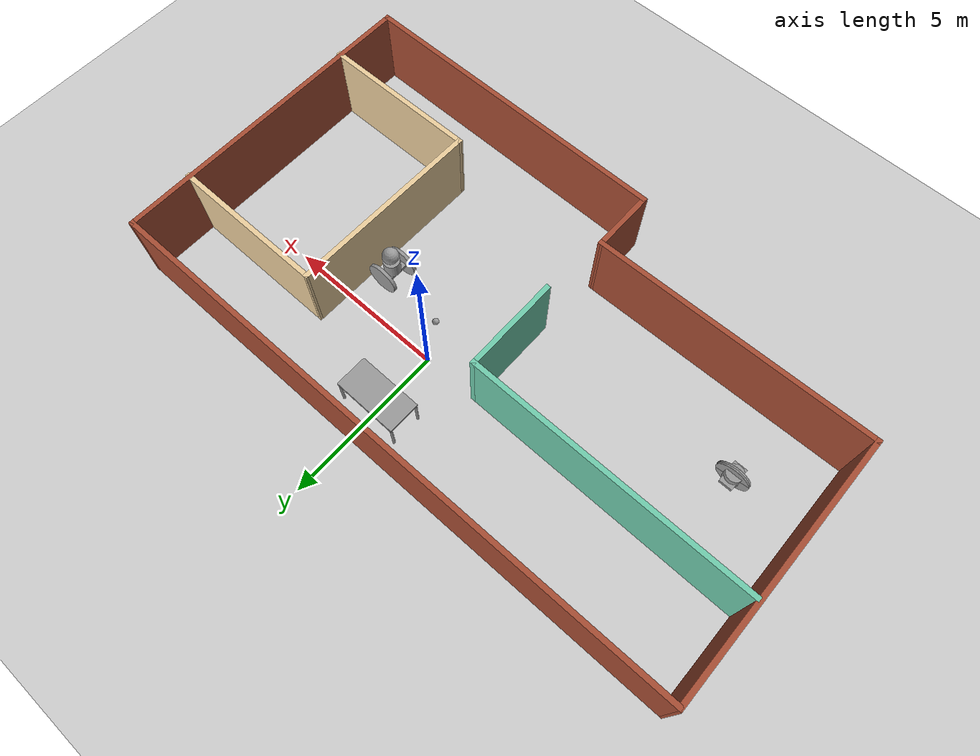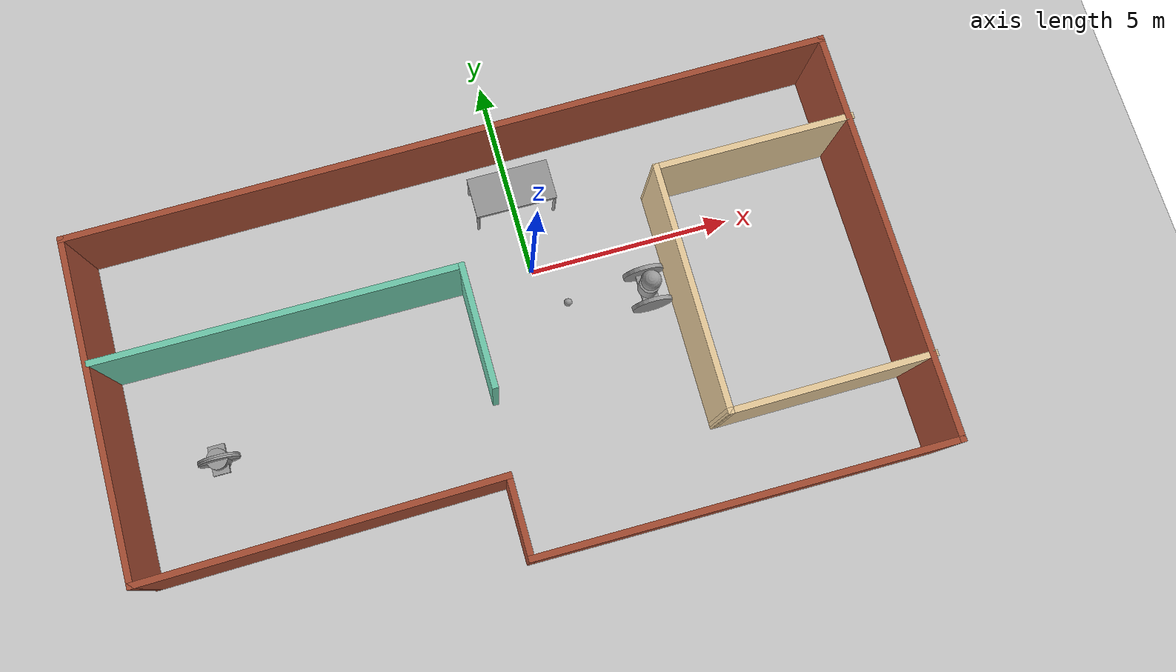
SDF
<sdf version="1.7">
 <world name="default">
  <plugin name="welcome_message" filename="libwelcome_message.so"/>
  <light name="sun" type="directional">
   <pose>0 0 10 0 -0 0</pose>
   <diffuse>0.8 0.8 0.8 1</diffuse>
   <specular>0.2 0.2 0.2 1</specular>
   <attenuation>
    <range>1000</range>
    <constant>0.9</constant>
    <linear>0.01</linear>
    <quadratic>0.001</quadratic>
   </attenuation>
   <direction>-0.5 0.1 -0.9</direction>
   <spot><inner_angle>0</inner_angle><outer_angle>0</outer_angle><falloff>0</falloff></spot>
  </light>
  <model name="ground_plane">
   <static>1</static>
   <link name="link">
    <collision name="collision">
     <geometry><plane><normal>0 0 1</normal><size>100 100</size></plane></geometry>
     <surface>
      <contact><collide_bitmask>65535</collide_bitmask></contact>
      <friction><ode><mu>100</mu><mu2>50</mu2></ode></friction>
     </surface>
    </collision>
    <visual name="visual">
     <cast_shadows>0</cast_shadows>
     <geometry><plane><normal>0 0 1</normal><size>100 100</size></plane></geometry>
     <material>
      <script><uri>file://media/materials/scripts/gazebo.material</uri><name>Gazebo/Grey</name></script>
     </material>
    </visual>
   </link>
  </model>
  <gravity>0 0 -9.8</gravity>
  <magnetic_field>6e-06 2.3e-05 -4.2e-05</magnetic_field>
  <atmosphere type="adiabatic"/>
  <physics type="ode">
   <max_step_size>0.001</max_step_size>
   <real_time_factor>1</real_time_factor>
   <real_time_update_rate>1000</real_time_update_rate>
  </physics>
  <scene><ambient>0.4 0.4 0.4 1</ambient><background>0.7 0.7 0.7 1</background><shadows>1</shadows></scene>
  <audio><device>default</device></audio>
  <spherical_coordinates>
   <surface_model>EARTH_WGS84</surface_model>
   <latitude_deg>0</latitude_deg>
   <longitude_deg>0</longitude_deg>
   <elevation>0</elevation>
   <heading_deg>0</heading_deg>
  </spherical_coordinates>
  <model name="Floor_L1">
   <pose>-1.22612 -1.82471 0 0 -0 0</pose>
   <link name="Wall_27">
    <collision name="Wall_27_Collision">
     <geometry><box><size>18.4681 0.15 2.5</size></box></geometry>
     <pose>0 0 1.25 0 -0 0</pose>
    </collision>
    <visual name="Wall_27_Visual">
     <pose>0 0 1.25 0 -0 0</pose>
     <geometry><box><size>18.4681 0.15 2.5</size></box></geometry>
     <material>
      <script><uri>file://media/materials/scripts/gazebo.material</uri><name>Gazebo/Bricks</name></script>
      <ambient>1 1 1 1</ambient>
     </material>
     <meta><layer>0</layer></meta>
    </visual>
    <pose>-0.022885 4.85371 0 0 -0 0.007752</pose>
   </link>
   <link name="Wall_28">
    <collision name="Wall_28_Collision">
     <geometry><box><size>10 0.15 2.5</size></box></geometry>
     <pose>0 0 1.25 0 -0 0</pose>
    </collision>
    <visual name="Wall_28_Visual">
     <pose>0 0 1.25 0 -0 0</pose>
     <geometry><box><size>10 0.15 2.5</size></box></geometry>
     <material>
      <script><uri>file://media/materials/scripts/gazebo.material</uri><name>Gazebo/Bricks</name></script>
      <ambient>1 1 1 1</ambient>
     </material>
     <meta><layer>0</layer></meta>
    </visual>
    <pose>9.13612 -0.000288 0 0 -0 -1.5708</pose>
   </link>
   <link name="Wall_29">
    <collision name="Wall_29_Collision">
     <geometry><box><size>10 0.15 2.5</size></box></geometry>
     <pose>0 0 1.25 0 -0 0</pose>
    </collision>
    <visual name="Wall_29_Visual">
     <pose>0 0 1.25 0 -0 0</pose>
     <geometry><box><size>10 0.15 2.5</size></box></geometry>
     <material>
      <script><uri>file://media/materials/scripts/gazebo.material</uri><name>Gazebo/Bricks</name></script>
      <ambient>1 1 1 1</ambient>
     </material>
     <meta><layer>0</layer></meta>
    </visual>
    <pose>4.21112 -4.92529 0 0 -0 3.14159</pose>
   </link>
   <link name="Wall_30">
    <collision name="Wall_30_Collision">
     <geometry><box><size>2 0.15 2.5</size></box></geometry>
     <pose>0 0 1.25 0 -0 0</pose>
    </collision>
    <visual name="Wall_30_Visual">
     <pose>0 0 1.25 0 -0 0</pose>
     <geometry><box><size>2 0.15 2.5</size></box></geometry>
     <material>
      <script><uri>file://media/materials/scripts/gazebo.material</uri><name>Gazebo/Bricks</name></script>
      <ambient>1 1 1 1</ambient>
     </material>
     <meta><layer>0</layer></meta>
    </visual>
    <pose>-0.713885 -4.00029 0 0 -0 1.5708</pose>
   </link>
   <link name="Wall_31">
    <collision name="Wall_31_Collision">
     <geometry><box><size>8.61874 0.15 2.5</size></box></geometry>
     <pose>0 0 1.25 0 -0 0</pose>
    </collision>
    <visual name="Wall_31_Visual">
     <pose>0 0 1.25 0 -0 0</pose>
     <geometry><box><size>8.61874 0.15 2.5</size></box></geometry>
     <material>
      <script><uri>file://media/materials/scripts/gazebo.material</uri><name>Gazebo/Bricks</name></script>
      <ambient>1 1 1 1</ambient>
     </material>
     <meta><layer>0</layer></meta>
    </visual>
    <pose>-4.94789 -3.14629 0 0 -0 -3.12482</pose>
   </link>
   <link name="Wall_32">
    <collision name="Wall_32_Collision">
     <geometry><box><size>8.15 0.15 2.5</size></box></geometry>
     <pose>0 0 1.25 0 -0 0</pose>
    </collision>
    <visual name="Wall_32_Visual">
     <pose>0 0 1.25 0 -0 0</pose>
     <geometry><box><size>8.15 0.15 2.5</size></box></geometry>
     <material>
      <script><uri>file://media/materials/scripts/gazebo.material</uri><name>Gazebo/Bricks</name></script>
      <ambient>1 1 1 1</ambient>
     </material>
     <meta><layer>0</layer></meta>
    </visual>
    <pose>-9.18188 0.782712 0 0 -0 1.5708</pose>
   </link>
   <link name="Wall_34">
    <collision name="Wall_34_Collision">
     <geometry><box><size>8.75 0.15 2.5</size></box></geometry>
     <pose>0 0 1.25 0 -0 0</pose>
    </collision>
    <visual name="Wall_34_Visual">
     <pose>0 0 1.25 0 -0 0</pose>
     <geometry><box><size>8.75 0.15 2.5</size></box></geometry>
     <material>
      <script><uri>file://media/materials/scripts/gazebo.material</uri><name>Gazebo/Grey</name></script>
      <ambient>0.435294 0.796078 0.67451 1</ambient>
     </material>
     <meta><layer>0</layer></meta>
    </visual>
    <pose>-4.79688 1.78771 0 0 -0 0</pose>
   </link>
   <link name="Wall_35">
    <collision name="Wall_35_Collision">
     <geometry><box><size>3 0.15 2.5</size></box></geometry>
     <pose>0 0 1.25 0 -0 0</pose>
    </collision>
    <visual name="Wall_35_Visual">
     <pose>0 0 1.25 0 -0 0</pose>
     <geometry><box><size>3 0.15 2.5</size></box></geometry>
     <material>
      <script><uri>file://media/materials/scripts/gazebo.material</uri><name>Gazebo/Grey</name></script>
      <ambient>0.435294 0.796078 0.67451 1</ambient>
     </material>
     <meta><layer>0</layer></meta>
    </visual>
    <pose>-0.496885 0.362712 0 0 -0 -1.5708</pose>
   </link>
   <link name="Wall_37">
    <collision name="Wall_37_Collision">
     <geometry><box><size>4.886 0.15 2.5</size></box></geometry>
     <pose>0 0 1.25 0 -0 0</pose>
    </collision>
    <visual name="Wall_37_Visual">
     <pose>0 0 1.25 0 -0 0</pose>
     <geometry><box><size>4.886 0.15 2.5</size></box></geometry>
     <material>
      <script><uri>file://media/materials/scripts/gazebo.material</uri><name>Gazebo/Grey</name></script>
      <ambient>0.921569 0.807843 0.615686 1</ambient>
     </material>
     <meta><layer>0</layer></meta>
    </visual>
    <pose>6.81412 2.89321 0 0 -0 -3.14012</pose>
   </link>
   <link name="Wall_38">
    <collision name="Wall_38_Collision">
     <geometry><box><size>6.02763 0.15 2.5</size></box></geometry>
     <pose>0 0 1.25 0 -0 0</pose>
    </collision>
    <visual name="Wall_38_Visual">
     <pose>0 0 1.25 0 -0 0</pose>
     <geometry><box><size>6.02763 0.15 2.5</size></box></geometry>
     <material>
      <script><uri>file://media/materials/scripts/gazebo.material</uri><name>Gazebo/Grey</name></script>
      <ambient>0.921569 0.807843 0.615686 1</ambient>
     </material>
     <meta><layer>0</layer></meta>
    </visual>
    <pose>4.41911 -0.048788 0 0 -0 -1.57998</pose>
   </link>
   <link name="Wall_39">
    <collision name="Wall_39_Collision">
     <geometry><box><size>4.94065 0.15 2.5</size></box></geometry>
     <pose>0 0 1.25 0 -0 0</pose>
    </collision>
    <visual name="Wall_39_Visual">
     <pose>0 0 1.25 0 -0 0</pose>
     <geometry><box><size>4.94065 0.15 2.5</size></box></geometry>
     <material>
      <script><uri>file://media/materials/scripts/gazebo.material</uri><name>Gazebo/Grey</name></script>
      <ambient>0.921569 0.807843 0.615686 1</ambient>
     </material>
     <meta><layer>0</layer></meta>
    </visual>
    <pose>6.78712 -2.97029 0 0 -0 0.007098</pose>
   </link>
   <static>1</static>
  </model>
  <model name="table">
   <link name="link_0">
    <inertial>
     <mass>1</mass>
     <inertia>
      <ixx>0.166667</ixx>
      <ixy>0</ixy>
      <ixz>0</ixz>
      <iyy>0.166667</iyy>
      <iyz>0</iyz>
      <izz>0.166667</izz>
     </inertia>
     <pose>0 0 1.5 0 -0 0</pose>
    </inertial>
    <pose>2e-06 0 0.4 0 -0 0</pose>
    <visual name="visual">
     <geometry><box><size>2 1 0.1</size></box></geometry>
     <material>
      <lighting>1</lighting>
      <script><uri>file://media/materials/scripts/gazebo.material</uri><name>Gazebo/Grey</name></script>
      <shader type="pixel"><normal_map>__default__</normal_map></shader>
      <ambient>0.3 0.3 0.3 1</ambient>
      <diffuse>0.7 0.7 0.7 1</diffuse>
      <specular>0.01 0.01 0.01 1</specular>
      <emissive>0 0 0 1</emissive>
     </material>
    </visual>
    <collision name="collision">
     <geometry><box><size>2 1 0.1</size></box></geometry>
     <surface>
      <friction>
       <ode><mu>1</mu><mu2>1</mu2><fdir1>0 0 0</fdir1><slip1>0</slip1><slip2>0</slip2></ode>
       <torsional>
        <coefficient>1</coefficient>
        <patch_radius>0</patch_radius>
        <surface_radius>0</surface_radius>
        <use_patch_radius>1</use_patch_radius>
        <ode><slip>0</slip></ode>
       </torsional>
      </friction>
      <bounce><restitution_coefficient>0</restitution_coefficient><threshold>1e+06</threshold></bounce>
      <contact>
       <collide_without_contact>0</collide_without_contact>
       <collide_without_contact_bitmask>1</collide_without_contact_bitmask>
       <collide_bitmask>1</collide_bitmask>
       <ode>
        <soft_cfm>0</soft_cfm>
        <soft_erp>0.2</soft_erp>
        <kp>1e+13</kp>
        <kd>1</kd>
        <max_vel>0.01</max_vel>
        <min_depth>0</min_depth>
       </ode>
       <bullet>
        <split_impulse>1</split_impulse>
        <split_impulse_penetration_threshold>-0.01</split_impulse_penetration_threshold>
        <soft_cfm>0</soft_cfm>
        <soft_erp>0.2</soft_erp>
        <kp>1e+13</kp>
        <kd>1</kd>
       </bullet>
      </contact>
     </surface>
    </collision>
   </link>
   <link name="link_1">
    <inertial>
     <mass>1</mass>
     <inertia><ixx>0.145833</ixx><ixy>0</ixy><ixz>0</ixz><iyy>0.145833</iyy><iyz>0</iyz><izz>0.125</izz></inertia>
    </inertial>
    <pose>-0.960002 -0.46 -0.1 0 -0 0</pose>
    <visual name="visual">
     <geometry><cylinder><radius>0.04</radius><length>1</length></cylinder></geometry>
     <material>
      <lighting>1</lighting>
      <script><uri>file://media/materials/scripts/gazebo.material</uri><name>Gazebo/Grey</name></script>
      <shader type="pixel"><normal_map>__default__</normal_map></shader>
      <ambient>0.3 0.3 0.3 1</ambient>
      <diffuse>0.7 0.7 0.7 1</diffuse>
      <specular>0.01 0.01 0.01 1</specular>
      <emissive>0 0 0 1</emissive>
     </material>
    </visual>
    <collision name="collision">
     <geometry><cylinder><radius>0.04</radius><length>1</length></cylinder></geometry>
     <surface>
      <friction>
       <ode><mu>1</mu><mu2>1</mu2><fdir1>0 0 0</fdir1><slip1>0</slip1><slip2>0</slip2></ode>
       <torsional>
        <coefficient>1</coefficient>
        <patch_radius>0</patch_radius>
        <surface_radius>0</surface_radius>
        <use_patch_radius>1</use_patch_radius>
        <ode><slip>0</slip></ode>
       </torsional>
      </friction>
      <bounce><restitution_coefficient>0</restitution_coefficient><threshold>1e+06</threshold></bounce>
      <contact>
       <collide_without_contact>0</collide_without_contact>
       <collide_without_contact_bitmask>1</collide_without_contact_bitmask>
       <collide_bitmask>1</collide_bitmask>
       <ode>
        <soft_cfm>0</soft_cfm>
        <soft_erp>0.2</soft_erp>
        <kp>1e+13</kp>
        <kd>1</kd>
        <max_vel>0.01</max_vel>
        <min_depth>0</min_depth>
       </ode>
       <bullet>
        <split_impulse>1</split_impulse>
        <split_impulse_penetration_threshold>-0.01</split_impulse_penetration_threshold>
        <soft_cfm>0</soft_cfm>
        <soft_erp>0.2</soft_erp>
        <kp>1e+13</kp>
        <kd>1</kd>
       </bullet>
      </contact>
     </surface>
    </collision>
   </link>
   <link name="link_1_clone">
    <inertial>
     <mass>1</mass>
     <inertia><ixx>0.145833</ixx><ixy>0</ixy><ixz>0</ixz><iyy>0.145833</iyy><iyz>0</iyz><izz>0.125</izz></inertia>
    </inertial>
    <pose>-0.960002 0.46 -0.1 0 -0 0</pose>
    <visual name="visual">
     <geometry><cylinder><radius>0.04</radius><length>1</length></cylinder></geometry>
     <material>
      <lighting>1</lighting>
      <script><uri>file://media/materials/scripts/gazebo.material</uri><name>Gazebo/Grey</name></script>
      <shader type="pixel"><normal_map>__default__</normal_map></shader>
      <ambient>0.3 0.3 0.3 1</ambient>
      <diffuse>0.7 0.7 0.7 1</diffuse>
      <specular>0.01 0.01 0.01 1</specular>
      <emissive>0 0 0 1</emissive>
     </material>
    </visual>
    <collision name="collision">
     <geometry><cylinder><radius>0.04</radius><length>1</length></cylinder></geometry>
     <surface>
      <friction>
       <ode><mu>1</mu><mu2>1</mu2><fdir1>0 0 0</fdir1><slip1>0</slip1><slip2>0</slip2></ode>
       <torsional>
        <coefficient>1</coefficient>
        <patch_radius>0</patch_radius>
        <surface_radius>0</surface_radius>
        <use_patch_radius>1</use_patch_radius>
        <ode><slip>0</slip></ode>
       </torsional>
      </friction>
      <bounce><restitution_coefficient>0</restitution_coefficient><threshold>1e+06</threshold></bounce>
      <contact>
       <collide_without_contact>0</collide_without_contact>
       <collide_without_contact_bitmask>1</collide_without_contact_bitmask>
       <collide_bitmask>1</collide_bitmask>
       <ode>
        <soft_cfm>0</soft_cfm>
        <soft_erp>0.2</soft_erp>
        <kp>1e+13</kp>
        <kd>1</kd>
        <max_vel>0.01</max_vel>
        <min_depth>0</min_depth>
       </ode>
       <bullet>
        <split_impulse>1</split_impulse>
        <split_impulse_penetration_threshold>-0.01</split_impulse_penetration_threshold>
        <soft_cfm>0</soft_cfm>
        <soft_erp>0.2</soft_erp>
        <kp>1e+13</kp>
        <kd>1</kd>
       </bullet>
      </contact>
     </surface>
    </collision>
   </link>
   <link name="link_1_clone_0">
    <inertial>
     <mass>1</mass>
     <inertia><ixx>0.145833</ixx><ixy>0</ixy><ixz>0</ixz><iyy>0.145833</iyy><iyz>0</iyz><izz>0.125</izz></inertia>
    </inertial>
    <pose>0.960002 -0.46 -0.1 0 -0 0</pose>
    <visual name="visual">
     <geometry><cylinder><radius>0.04</radius><length>1</length></cylinder></geometry>
     <material>
      <lighting>1</lighting>
      <script><uri>file://media/materials/scripts/gazebo.material</uri><name>Gazebo/Grey</name></script>
      <shader type="pixel"><normal_map>__default__</normal_map></shader>
      <ambient>0.3 0.3 0.3 1</ambient>
      <diffuse>0.7 0.7 0.7 1</diffuse>
      <specular>0.01 0.01 0.01 1</specular>
      <emissive>0 0 0 1</emissive>
     </material>
    </visual>
    <collision name="collision">
     <geometry><cylinder><radius>0.04</radius><length>1</length></cylinder></geometry>
     <surface>
      <friction>
       <ode><mu>1</mu><mu2>1</mu2><fdir1>0 0 0</fdir1><slip1>0</slip1><slip2>0</slip2></ode>
       <torsional>
        <coefficient>1</coefficient>
        <patch_radius>0</patch_radius>
        <surface_radius>0</surface_radius>
        <use_patch_radius>1</use_patch_radius>
        <ode><slip>0</slip></ode>
       </torsional>
      </friction>
      <bounce><restitution_coefficient>0</restitution_coefficient><threshold>1e+06</threshold></bounce>
      <contact>
       <collide_without_contact>0</collide_without_contact>
       <collide_without_contact_bitmask>1</collide_without_contact_bitmask>
       <collide_bitmask>1</collide_bitmask>
       <ode>
        <soft_cfm>0</soft_cfm>
        <soft_erp>0.2</soft_erp>
        <kp>1e+13</kp>
        <kd>1</kd>
        <max_vel>0.01</max_vel>
        <min_depth>0</min_depth>
       </ode>
       <bullet>
        <split_impulse>1</split_impulse>
        <split_impulse_penetration_threshold>-0.01</split_impulse_penetration_threshold>
        <soft_cfm>0</soft_cfm>
        <soft_erp>0.2</soft_erp>
        <kp>1e+13</kp>
        <kd>1</kd>
       </bullet>
      </contact>
     </surface>
    </collision>
   </link>
   <link name="link_1_clone_1">
    <inertial>
     <mass>1</mass>
     <inertia><ixx>0.145833</ixx><ixy>0</ixy><ixz>0</ixz><iyy>0.145833</iyy><iyz>0</iyz><izz>0.125</izz></inertia>
    </inertial>
    <pose>0.960002 0.46 -0.1 0 -0 0</pose>
    <visual name="visual">
     <geometry><cylinder><radius>0.04</radius><length>1</length></cylinder></geometry>
     <material>
      <lighting>1</lighting>
      <script><uri>file://media/materials/scripts/gazebo.material</uri><name>Gazebo/Grey</name></script>
      <shader type="pixel"><normal_map>__default__</normal_map></shader>
      <ambient>0.3 0.3 0.3 1</ambient>
      <diffuse>0.7 0.7 0.7 1</diffuse>
      <specular>0.01 0.01 0.01 1</specular>
      <emissive>0 0 0 1</emissive>
     </material>
    </visual>
    <collision name="collision">
     <geometry><cylinder><radius>0.04</radius><length>1</length></cylinder></geometry>
     <surface>
      <friction>
       <ode><mu>1</mu><mu2>1</mu2><fdir1>0 0 0</fdir1><slip1>0</slip1><slip2>0</slip2></ode>
       <torsional>
        <coefficient>1</coefficient>
        <patch_radius>0</patch_radius>
        <surface_radius>0</surface_radius>
        <use_patch_radius>1</use_patch_radius>
        <ode><slip>0</slip></ode>
       </torsional>
      </friction>
      <bounce><restitution_coefficient>0</restitution_coefficient><threshold>1e+06</threshold></bounce>
      <contact>
       <collide_without_contact>0</collide_without_contact>
       <collide_without_contact_bitmask>1</collide_without_contact_bitmask>
       <collide_bitmask>1</collide_bitmask>
       <ode>
        <soft_cfm>0</soft_cfm>
        <soft_erp>0.2</soft_erp>
        <kp>1e+13</kp>
        <kd>1</kd>
        <max_vel>0.01</max_vel>
        <min_depth>0</min_depth>
       </ode>
       <bullet>
        <split_impulse>1</split_impulse>
        <split_impulse_penetration_threshold>-0.01</split_impulse_penetration_threshold>
        <soft_cfm>0</soft_cfm>
        <soft_erp>0.2</soft_erp>
        <kp>1e+13</kp>
        <kd>1</kd>
       </bullet>
      </contact>
     </surface>
    </collision>
   </link>
   <joint name="link_0_JOINT_1" type="revolute">
    <parent>link_0</parent>
    <child>link_1_clone</child>
    <axis>
     <xyz>1 0 0</xyz>
     <limit>
      <lower>-1.79769e+308</lower>
      <upper>1.79769e+308</upper>
      <effort>-1</effort>
      <velocity>-1</velocity>
     </limit>
     <dynamics>
      <spring_reference>0</spring_reference>
      <spring_stiffness>0</spring_stiffness>
      <damping>0</damping>
     </dynamics>
    </axis>
    <physics>
     <ode><limit><cfm>0</cfm><erp>0.2</erp></limit><suspension><cfm>0</cfm><erp>0.2</erp></suspension></ode>
    </physics>
   </joint>
   <joint name="link_0_JOINT_2" type="revolute">
    <parent>link_0</parent>
    <child>link_1_clone_0</child>
    <axis>
     <xyz>1 0 0</xyz>
     <limit>
      <lower>-1.79769e+308</lower>
      <upper>1.79769e+308</upper>
      <effort>-1</effort>
      <velocity>-1</velocity>
     </limit>
     <dynamics>
      <spring_reference>0</spring_reference>
      <spring_stiffness>0</spring_stiffness>
      <damping>0</damping>
     </dynamics>
    </axis>
    <physics>
     <ode><limit><cfm>0</cfm><erp>0.2</erp></limit><suspension><cfm>0</cfm><erp>0.2</erp></suspension></ode>
    </physics>
   </joint>
   <joint name="link_0_JOINT_3" type="revolute">
    <parent>link_0</parent>
    <child>link_1_clone_1</child>
    <axis>
     <xyz>1 0 0</xyz>
     <limit>
      <lower>-1.79769e+308</lower>
      <upper>1.79769e+308</upper>
      <effort>-1</effort>
      <velocity>-1</velocity>
     </limit>
     <dynamics>
      <spring_reference>0</spring_reference>
      <spring_stiffness>0</spring_stiffness>
      <damping>0</damping>
     </dynamics>
    </axis>
    <physics>
     <ode><limit><cfm>0</cfm><erp>0.2</erp></limit><suspension><cfm>0</cfm><erp>0.2</erp></suspension></ode>
    </physics>
   </joint>
   <joint name="link_1_JOINT_0" type="revolute">
    <parent>link_0</parent>
    <child>link_1</child>
    <axis>
     <xyz>1 0 0</xyz>
     <limit>
      <lower>-1.79769e+308</lower>
      <upper>1.79769e+308</upper>
      <effort>-1</effort>
      <velocity>-1</velocity>
     </limit>
     <dynamics>
      <spring_reference>0</spring_reference>
      <spring_stiffness>0</spring_stiffness>
      <damping>0</damping>
     </dynamics>
    </axis>
    <physics>
     <ode><limit><cfm>0</cfm><erp>0.2</erp></limit><suspension><cfm>0</cfm><erp>0.2</erp></suspension></ode>
    </physics>
   </joint>
   <static>0</static>
   <pose>-0.007312 1.89749 0.599993 -1e-06 2e-06 -0.004539</pose>
  </model>
  <model name="model">
   <link name="link_0">
    <inertial>
     <mass>1</mass>
     <inertia>
      <ixx>0.166667</ixx>
      <ixy>0</ixy>
      <ixz>0</ixz>
      <iyy>0.166667</iyy>
      <iyz>0</iyz>
      <izz>0.166667</izz>
     </inertia>
    </inertial>
    <visual name="visual">
     <geometry><box><size>0.4 0.7 0.1</size></box></geometry>
     <material>
      <lighting>1</lighting>
      <script><uri>file://media/materials/scripts/gazebo.material</uri><name>Gazebo/Grey</name></script>
      <shader type="pixel"><normal_map>__default__</normal_map></shader>
      <ambient>0.3 0.3 0.3 1</ambient>
      <diffuse>0.7 0.7 0.7 1</diffuse>
      <specular>0.01 0.01 0.01 1</specular>
      <emissive>0 0 0 1</emissive>
     </material>
    </visual>
    <collision name="collision">
     <geometry><box><size>0.4 0.7 0.1</size></box></geometry>
     <surface>
      <friction>
       <ode><mu>1</mu><mu2>1</mu2><fdir1>0 0 0</fdir1><slip1>0</slip1><slip2>0</slip2></ode>
       <torsional>
        <coefficient>1</coefficient>
        <patch_radius>0</patch_radius>
        <surface_radius>0</surface_radius>
        <use_patch_radius>1</use_patch_radius>
        <ode><slip>0</slip></ode>
       </torsional>
      </friction>
      <bounce><restitution_coefficient>0</restitution_coefficient><threshold>1e+06</threshold></bounce>
      <contact>
       <collide_without_contact>0</collide_without_contact>
       <collide_without_contact_bitmask>1</collide_without_contact_bitmask>
       <collide_bitmask>1</collide_bitmask>
       <ode>
        <soft_cfm>0</soft_cfm>
        <soft_erp>0.2</soft_erp>
        <kp>1e+13</kp>
        <kd>1</kd>
        <max_vel>0.01</max_vel>
        <min_depth>0</min_depth>
       </ode>
       <bullet>
        <split_impulse>1</split_impulse>
        <split_impulse_penetration_threshold>-0.01</split_impulse_penetration_threshold>
        <soft_cfm>0</soft_cfm>
        <soft_erp>0.2</soft_erp>
        <kp>1e+13</kp>
        <kd>1</kd>
       </bullet>
      </contact>
     </surface>
    </collision>
   </link>
   <link name="link_1">
    <inertial>
     <mass>1</mass>
     <inertia><ixx>0.1</ixx><ixy>0</ixy><ixz>0</ixz><iyy>0.1</iyy><iyz>0</iyz><izz>0.1</izz></inertia>
    </inertial>
    <visual name="visual">
     <geometry><sphere><radius>0.25</radius></sphere></geometry>
     <material>
      <lighting>1</lighting>
      <script><uri>file://media/materials/scripts/gazebo.material</uri><name>Gazebo/Grey</name></script>
      <shader type="pixel"><normal_map>__default__</normal_map></shader>
      <ambient>0.3 0.3 0.3 1</ambient>
      <diffuse>0.7 0.7 0.7 1</diffuse>
      <specular>0.01 0.01 0.01 1</specular>
      <emissive>0 0 0 1</emissive>
     </material>
    </visual>
    <collision name="collision">
     <geometry><sphere><radius>0.25</radius></sphere></geometry>
     <surface>
      <friction>
       <ode><mu>1</mu><mu2>1</mu2><fdir1>0 0 0</fdir1><slip1>0</slip1><slip2>0</slip2></ode>
       <torsional>
        <coefficient>1</coefficient>
        <patch_radius>0</patch_radius>
        <surface_radius>0</surface_radius>
        <use_patch_radius>1</use_patch_radius>
        <ode><slip>0</slip></ode>
       </torsional>
      </friction>
      <bounce><restitution_coefficient>0</restitution_coefficient><threshold>1e+06</threshold></bounce>
      <contact>
       <collide_without_contact>0</collide_without_contact>
       <collide_without_contact_bitmask>1</collide_without_contact_bitmask>
       <collide_bitmask>1</collide_bitmask>
       <ode>
        <soft_cfm>0</soft_cfm>
        <soft_erp>0.2</soft_erp>
        <kp>1e+13</kp>
        <kd>1</kd>
        <max_vel>0.01</max_vel>
        <min_depth>0</min_depth>
       </ode>
       <bullet>
        <split_impulse>1</split_impulse>
        <split_impulse_penetration_threshold>-0.01</split_impulse_penetration_threshold>
        <soft_cfm>0</soft_cfm>
        <soft_erp>0.2</soft_erp>
        <kp>1e+13</kp>
        <kd>1</kd>
       </bullet>
      </contact>
     </surface>
    </collision>
   </link>
   <link name="link_2">
    <inertial>
     <mass>1</mass>
     <inertia><ixx>0.145833</ixx><ixy>0</ixy><ixz>0</ixz><iyy>0.145833</iyy><iyz>0</iyz><izz>0.125</izz></inertia>
    </inertial>
    <visual name="visual">
     <geometry><cylinder><radius>0.25</radius><length>0.5</length></cylinder></geometry>
     <material>
      <lighting>1</lighting>
      <script><uri>file://media/materials/scripts/gazebo.material</uri><name>Gazebo/Grey</name></script>
      <shader type="pixel"><normal_map>__default__</normal_map></shader>
      <ambient>0.3 0.3 0.3 1</ambient>
      <diffuse>0.7 0.7 0.7 1</diffuse>
      <specular>0.01 0.01 0.01 1</specular>
      <emissive>0 0 0 1</emissive>
     </material>
    </visual>
    <collision name="collision">
     <geometry><cylinder><radius>0.25</radius><length>0.5</length></cylinder></geometry>
     <surface>
      <friction>
       <ode><mu>1</mu><mu2>1</mu2><fdir1>0 0 0</fdir1><slip1>0</slip1><slip2>0</slip2></ode>
       <torsional>
        <coefficient>1</coefficient>
        <patch_radius>0</patch_radius>
        <surface_radius>0</surface_radius>
        <use_patch_radius>1</use_patch_radius>
        <ode><slip>0</slip></ode>
       </torsional>
      </friction>
      <bounce><restitution_coefficient>0</restitution_coefficient><threshold>1e+06</threshold></bounce>
      <contact>
       <collide_without_contact>0</collide_without_contact>
       <collide_without_contact_bitmask>1</collide_without_contact_bitmask>
       <collide_bitmask>1</collide_bitmask>
       <ode>
        <soft_cfm>0</soft_cfm>
        <soft_erp>0.2</soft_erp>
        <kp>1e+13</kp>
        <kd>1</kd>
        <max_vel>0.01</max_vel>
        <min_depth>0</min_depth>
       </ode>
       <bullet>
        <split_impulse>1</split_impulse>
        <split_impulse_penetration_threshold>-0.01</split_impulse_penetration_threshold>
        <soft_cfm>0</soft_cfm>
        <soft_erp>0.2</soft_erp>
        <kp>1e+13</kp>
        <kd>1</kd>
       </bullet>
      </contact>
     </surface>
    </collision>
   </link>
   <link name="link_3">
    <inertial>
     <mass>1</mass>
     <inertia><ixx>0.145833</ixx><ixy>0</ixy><ixz>0</ixz><iyy>0.145833</iyy><iyz>0</iyz><izz>0.125</izz></inertia>
    </inertial>
    <visual name="visual">
     <pose>0 0 0 1.5708 -0 0</pose>
     <geometry><cylinder><radius>0.5</radius><length>0.1</length></cylinder></geometry>
     <material>
      <lighting>1</lighting>
      <script><uri>file://media/materials/scripts/gazebo.material</uri><name>Gazebo/Grey</name></script>
      <shader type="pixel"><normal_map>__default__</normal_map></shader>
      <ambient>0.3 0.3 0.3 1</ambient>
      <diffuse>0.7 0.7 0.7 1</diffuse>
      <specular>0.01 0.01 0.01 1</specular>
      <emissive>0 0 0 1</emissive>
     </material>
    </visual>
    <collision name="collision">
     <pose>0 0 0 1.5708 -0 0</pose>
     <geometry><cylinder><radius>0.5</radius><length>0.1</length></cylinder></geometry>
     <surface>
      <friction>
       <ode><mu>1</mu><mu2>1</mu2><fdir1>0 0 0</fdir1><slip1>0</slip1><slip2>0</slip2></ode>
       <torsional>
        <coefficient>1</coefficient>
        <patch_radius>0</patch_radius>
        <surface_radius>0</surface_radius>
        <use_patch_radius>1</use_patch_radius>
        <ode><slip>0</slip></ode>
       </torsional>
      </friction>
      <bounce><restitution_coefficient>0</restitution_coefficient><threshold>1e+06</threshold></bounce>
      <contact>
       <collide_without_contact>0</collide_without_contact>
       <collide_without_contact_bitmask>1</collide_without_contact_bitmask>
       <collide_bitmask>1</collide_bitmask>
       <ode>
        <soft_cfm>0</soft_cfm>
        <soft_erp>0.2</soft_erp>
        <kp>1e+13</kp>
        <kd>1</kd>
        <max_vel>0.01</max_vel>
        <min_depth>0</min_depth>
       </ode>
       <bullet>
        <split_impulse>1</split_impulse>
        <split_impulse_penetration_threshold>-0.01</split_impulse_penetration_threshold>
        <soft_cfm>0</soft_cfm>
        <soft_erp>0.2</soft_erp>
        <kp>1e+13</kp>
        <kd>1</kd>
       </bullet>
      </contact>
     </surface>
    </collision>
   </link>
   <link name="link_3_clone">
    <inertial>
     <mass>1</mass>
     <inertia><ixx>0.145833</ixx><ixy>0</ixy><ixz>0</ixz><iyy>0.145833</iyy><iyz>0</iyz><izz>0.125</izz></inertia>
    </inertial>
    <pose>0 0 0 -0.01 -0 0.003107</pose>
    <visual name="visual">
     <pose>0 0 0 1.5708 -0 0</pose>
     <geometry><cylinder><radius>0.5</radius><length>0.1</length></cylinder></geometry>
     <material>
      <lighting>1</lighting>
      <script><uri>file://media/materials/scripts/gazebo.material</uri><name>Gazebo/Grey</name></script>
      <shader type="pixel"><normal_map>__default__</normal_map></shader>
      <ambient>0.3 0.3 0.3 1</ambient>
      <diffuse>0.7 0.7 0.7 1</diffuse>
      <specular>0.01 0.01 0.01 1</specular>
      <emissive>0 0 0 1</emissive>
     </material>
    </visual>
    <collision name="collision">
     <pose>0 0 0 1.5708 -0 0</pose>
     <geometry><cylinder><radius>0.5</radius><length>0.1</length></cylinder></geometry>
     <surface>
      <friction>
       <ode><mu>1</mu><mu2>1</mu2><fdir1>0 0 0</fdir1><slip1>0</slip1><slip2>0</slip2></ode>
       <torsional>
        <coefficient>1</coefficient>
        <patch_radius>0</patch_radius>
        <surface_radius>0</surface_radius>
        <use_patch_radius>1</use_patch_radius>
        <ode><slip>0</slip></ode>
       </torsional>
      </friction>
      <bounce><restitution_coefficient>0</restitution_coefficient><threshold>1e+06</threshold></bounce>
      <contact>
       <collide_without_contact>0</collide_without_contact>
       <collide_without_contact_bitmask>1</collide_without_contact_bitmask>
       <collide_bitmask>1</collide_bitmask>
       <ode>
        <soft_cfm>0</soft_cfm>
        <soft_erp>0.2</soft_erp>
        <kp>1e+13</kp>
        <kd>1</kd>
        <max_vel>0.01</max_vel>
        <min_depth>0</min_depth>
       </ode>
       <bullet>
        <split_impulse>1</split_impulse>
        <split_impulse_penetration_threshold>-0.01</split_impulse_penetration_threshold>
        <soft_cfm>0</soft_cfm>
        <soft_erp>0.2</soft_erp>
        <kp>1e+13</kp>
        <kd>1</kd>
       </bullet>
      </contact>
     </surface>
    </collision>
   </link>
   <joint name="link_0_JOINT_0" type="universal">
    <parent>link_0</parent>
    <child>link_3</child>
    <axis>
     <xyz>1 0 0</xyz>
     <limit>
      <lower>-1.79769e+308</lower>
      <upper>1.79769e+308</upper>
      <effort>-1</effort>
      <velocity>-1</velocity>
     </limit>
     <dynamics>
      <spring_reference>0</spring_reference>
      <spring_stiffness>0</spring_stiffness>
      <damping>0</damping>
      <friction>0</friction>
     </dynamics>
    </axis>
    <axis2>
     <xyz>0 0 1</xyz>
     <limit><lower>-1e+16</lower><upper>1e+16</upper><effort>-1</effort><velocity>-1</velocity></limit>
     <dynamics>
      <spring_reference>0</spring_reference>
      <spring_stiffness>0</spring_stiffness>
      <damping>0</damping>
      <friction>0</friction>
     </dynamics>
    </axis2>
    <physics>
     <ode><limit><cfm>0</cfm><erp>0.2</erp></limit><suspension><cfm>0</cfm><erp>0.2</erp></suspension></ode>
    </physics>
   </joint>
   <joint name="link_0_JOINT_1" type="universal">
    <parent>link_0</parent>
    <child>link_3_clone</child>
    <axis>
     <xyz>0.999995 -0.003107 -3.1e-05</xyz>
     <limit>
      <lower>-1.79769e+308</lower>
      <upper>1.79769e+308</upper>
      <effort>-1</effort>
      <velocity>-1</velocity>
     </limit>
     <dynamics>
      <spring_reference>0</spring_reference>
      <spring_stiffness>0</spring_stiffness>
      <damping>0</damping>
      <friction>0</friction>
     </dynamics>
    </axis>
    <axis2>
     <xyz>0 0 1</xyz>
     <limit><lower>-1e+16</lower><upper>1e+16</upper><effort>-1</effort><velocity>-1</velocity></limit>
     <dynamics>
      <spring_reference>0</spring_reference>
      <spring_stiffness>0</spring_stiffness>
      <damping>0</damping>
      <friction>0</friction>
     </dynamics>
    </axis2>
    <physics>
     <ode><limit><cfm>0</cfm><erp>0.2</erp></limit><suspension><cfm>0</cfm><erp>0.2</erp></suspension></ode>
    </physics>
   </joint>
   <joint name="link_0_JOINT_2" type="universal">
    <parent>link_0</parent>
    <child>link_2</child>
    <axis>
     <xyz>1 0 0</xyz>
     <limit>
      <lower>-1.79769e+308</lower>
      <upper>1.79769e+308</upper>
      <effort>-1</effort>
      <velocity>-1</velocity>
     </limit>
     <dynamics>
      <spring_reference>0</spring_reference>
      <spring_stiffness>0</spring_stiffness>
      <damping>0</damping>
      <friction>0</friction>
     </dynamics>
    </axis>
    <axis2>
     <xyz>0 0 1</xyz>
     <limit><lower>-1e+16</lower><upper>1e+16</upper><effort>-1</effort><velocity>-1</velocity></limit>
     <dynamics>
      <spring_reference>0</spring_reference>
      <spring_stiffness>0</spring_stiffness>
      <damping>0</damping>
      <friction>0</friction>
     </dynamics>
    </axis2>
    <physics>
     <ode><limit><cfm>0</cfm><erp>0.2</erp></limit><suspension><cfm>0</cfm><erp>0.2</erp></suspension></ode>
    </physics>
   </joint>
   <joint name="link_2_JOINT_4" type="universal">
    <parent>link_2</parent>
    <child>link_1</child>
    <axis>
     <xyz>1 0 0</xyz>
     <limit>
      <lower>-1.79769e+308</lower>
      <upper>1.79769e+308</upper>
      <effort>-1</effort>
      <velocity>-1</velocity>
     </limit>
     <dynamics>
      <spring_reference>0</spring_reference>
      <spring_stiffness>0</spring_stiffness>
      <damping>0</damping>
      <friction>0</friction>
     </dynamics>
    </axis>
    <axis2>
     <xyz>0 0 1</xyz>
     <limit><lower>-1e+16</lower><upper>1e+16</upper><effort>-1</effort><velocity>-1</velocity></limit>
     <dynamics>
      <spring_reference>0</spring_reference>
      <spring_stiffness>0</spring_stiffness>
      <damping>0</damping>
      <friction>0</friction>
     </dynamics>
    </axis2>
    <physics>
     <ode><limit><cfm>0</cfm><erp>0.2</erp></limit><suspension><cfm>0</cfm><erp>0.2</erp></suspension></ode>
    </physics>
   </joint>
   <static>1</static>
   <pose>-8.29492 -2.637 0.8384 0 -0 0</pose>
  </model>
  <model name="model_clone">
   <link name="link_0">
    <inertial>
     <mass>1</mass>
     <inertia>
      <ixx>0.166667</ixx>
      <ixy>0</ixy>
      <ixz>0</ixz>
      <iyy>0.166667</iyy>
      <iyz>0</iyz>
      <izz>0.166667</izz>
     </inertia>
    </inertial>
    <pose>0 -0.4 1.5 0 -0 0</pose>
    <visual name="visual">
     <geometry><box><size>0.4 0.7 0.1</size></box></geometry>
     <material>
      <lighting>1</lighting>
      <script><uri>file://media/materials/scripts/gazebo.material</uri><name>Gazebo/Grey</name></script>
      <shader type="pixel"><normal_map>__default__</normal_map></shader>
      <ambient>0.3 0.3 0.3 1</ambient>
      <diffuse>0.7 0.7 0.7 1</diffuse>
      <specular>0.01 0.01 0.01 1</specular>
      <emissive>0 0 0 1</emissive>
     </material>
    </visual>
    <collision name="collision">
     <geometry><box><size>0.4 0.7 0.1</size></box></geometry>
     <surface>
      <friction>
       <ode><mu>1</mu><mu2>1</mu2><fdir1>0 0 0</fdir1><slip1>0</slip1><slip2>0</slip2></ode>
       <torsional>
        <coefficient>1</coefficient>
        <patch_radius>0</patch_radius>
        <surface_radius>0</surface_radius>
        <use_patch_radius>1</use_patch_radius>
        <ode><slip>0</slip></ode>
       </torsional>
      </friction>
      <bounce><restitution_coefficient>0</restitution_coefficient><threshold>1e+06</threshold></bounce>
      <contact>
       <collide_without_contact>0</collide_without_contact>
       <collide_without_contact_bitmask>1</collide_without_contact_bitmask>
       <collide_bitmask>1</collide_bitmask>
       <ode>
        <soft_cfm>0</soft_cfm>
        <soft_erp>0.2</soft_erp>
        <kp>1e+13</kp>
        <kd>1</kd>
        <max_vel>0.01</max_vel>
        <min_depth>0</min_depth>
       </ode>
       <bullet>
        <split_impulse>1</split_impulse>
        <split_impulse_penetration_threshold>-0.01</split_impulse_penetration_threshold>
        <soft_cfm>0</soft_cfm>
        <soft_erp>0.2</soft_erp>
        <kp>1e+13</kp>
        <kd>1</kd>
       </bullet>
      </contact>
     </surface>
    </collision>
   </link>
   <link name="link_1">
    <inertial>
     <mass>1</mass>
     <inertia><ixx>0.1</ixx><ixy>0</ixy><ixz>0</ixz><iyy>0.1</iyy><iyz>0</iyz><izz>0.1</izz></inertia>
    </inertial>
    <pose>0 -0.4 2.3 0 -0 0</pose>
    <visual name="visual">
     <geometry><sphere><radius>0.25</radius></sphere></geometry>
     <material>
      <lighting>1</lighting>
      <script><uri>file://media/materials/scripts/gazebo.material</uri><name>Gazebo/Grey</name></script>
      <shader type="pixel"><normal_map>__default__</normal_map></shader>
      <ambient>0.3 0.3 0.3 1</ambient>
      <diffuse>0.7 0.7 0.7 1</diffuse>
      <specular>0.01 0.01 0.01 1</specular>
      <emissive>0 0 0 1</emissive>
     </material>
    </visual>
    <collision name="collision">
     <geometry><sphere><radius>0.25</radius></sphere></geometry>
     <surface>
      <friction>
       <ode><mu>1</mu><mu2>1</mu2><fdir1>0 0 0</fdir1><slip1>0</slip1><slip2>0</slip2></ode>
       <torsional>
        <coefficient>1</coefficient>
        <patch_radius>0</patch_radius>
        <surface_radius>0</surface_radius>
        <use_patch_radius>1</use_patch_radius>
        <ode><slip>0</slip></ode>
       </torsional>
      </friction>
      <bounce><restitution_coefficient>0</restitution_coefficient><threshold>1e+06</threshold></bounce>
      <contact>
       <collide_without_contact>0</collide_without_contact>
       <collide_without_contact_bitmask>1</collide_without_contact_bitmask>
       <collide_bitmask>1</collide_bitmask>
       <ode>
        <soft_cfm>0</soft_cfm>
        <soft_erp>0.2</soft_erp>
        <kp>1e+13</kp>
        <kd>1</kd>
        <max_vel>0.01</max_vel>
        <min_depth>0</min_depth>
       </ode>
       <bullet>
        <split_impulse>1</split_impulse>
        <split_impulse_penetration_threshold>-0.01</split_impulse_penetration_threshold>
        <soft_cfm>0</soft_cfm>
        <soft_erp>0.2</soft_erp>
        <kp>1e+13</kp>
        <kd>1</kd>
       </bullet>
      </contact>
     </surface>
    </collision>
   </link>
   <link name="link_2">
    <inertial>
     <mass>1</mass>
     <inertia><ixx>0.145833</ixx><ixy>0</ixy><ixz>0</ixz><iyy>0.145833</iyy><iyz>0</iyz><izz>0.125</izz></inertia>
    </inertial>
    <pose>0 -0.4 1.8 0 -0 0</pose>
    <visual name="visual">
     <geometry><cylinder><radius>0.25</radius><length>0.5</length></cylinder></geometry>
     <material>
      <lighting>1</lighting>
      <script><uri>file://media/materials/scripts/gazebo.material</uri><name>Gazebo/Grey</name></script>
      <shader type="pixel"><normal_map>__default__</normal_map></shader>
      <ambient>0.3 0.3 0.3 1</ambient>
      <diffuse>0.7 0.7 0.7 1</diffuse>
      <specular>0.01 0.01 0.01 1</specular>
      <emissive>0 0 0 1</emissive>
     </material>
    </visual>
    <collision name="collision">
     <geometry><cylinder><radius>0.25</radius><length>0.5</length></cylinder></geometry>
     <surface>
      <friction>
       <ode><mu>1</mu><mu2>1</mu2><fdir1>0 0 0</fdir1><slip1>0</slip1><slip2>0</slip2></ode>
       <torsional>
        <coefficient>1</coefficient>
        <patch_radius>0</patch_radius>
        <surface_radius>0</surface_radius>
        <use_patch_radius>1</use_patch_radius>
        <ode><slip>0</slip></ode>
       </torsional>
      </friction>
      <bounce><restitution_coefficient>0</restitution_coefficient><threshold>1e+06</threshold></bounce>
      <contact>
       <collide_without_contact>0</collide_without_contact>
       <collide_without_contact_bitmask>1</collide_without_contact_bitmask>
       <collide_bitmask>1</collide_bitmask>
       <ode>
        <soft_cfm>0</soft_cfm>
        <soft_erp>0.2</soft_erp>
        <kp>1e+13</kp>
        <kd>1</kd>
        <max_vel>0.01</max_vel>
        <min_depth>0</min_depth>
       </ode>
       <bullet>
        <split_impulse>1</split_impulse>
        <split_impulse_penetration_threshold>-0.01</split_impulse_penetration_threshold>
        <soft_cfm>0</soft_cfm>
        <soft_erp>0.2</soft_erp>
        <kp>1e+13</kp>
        <kd>1</kd>
       </bullet>
      </contact>
     </surface>
    </collision>
   </link>
   <link name="link_3">
    <inertial>
     <mass>1</mass>
     <inertia><ixx>0.145833</ixx><ixy>0</ixy><ixz>0</ixz><iyy>0.145833</iyy><iyz>0</iyz><izz>0.125</izz></inertia>
    </inertial>
    <pose>0 0 1.54252 0 -0 0</pose>
    <visual name="visual">
     <pose>0 0 0 1.5708 -0 0</pose>
     <geometry><cylinder><radius>0.5</radius><length>0.1</length></cylinder></geometry>
     <material>
      <lighting>1</lighting>
      <script><uri>file://media/materials/scripts/gazebo.material</uri><name>Gazebo/Grey</name></script>
      <shader type="pixel"><normal_map>__default__</normal_map></shader>
      <ambient>0.3 0.3 0.3 1</ambient>
      <diffuse>0.7 0.7 0.7 1</diffuse>
      <specular>0.01 0.01 0.01 1</specular>
      <emissive>0 0 0 1</emissive>
     </material>
    </visual>
    <collision name="collision">
     <pose>0 0 0 1.5708 -0 0</pose>
     <geometry><cylinder><radius>0.5</radius><length>0.1</length></cylinder></geometry>
     <surface>
      <friction>
       <ode><mu>1</mu><mu2>1</mu2><fdir1>0 0 0</fdir1><slip1>0</slip1><slip2>0</slip2></ode>
       <torsional>
        <coefficient>1</coefficient>
        <patch_radius>0</patch_radius>
        <surface_radius>0</surface_radius>
        <use_patch_radius>1</use_patch_radius>
        <ode><slip>0</slip></ode>
       </torsional>
      </friction>
      <bounce><restitution_coefficient>0</restitution_coefficient><threshold>1e+06</threshold></bounce>
      <contact>
       <collide_without_contact>0</collide_without_contact>
       <collide_without_contact_bitmask>1</collide_without_contact_bitmask>
       <collide_bitmask>1</collide_bitmask>
       <ode>
        <soft_cfm>0</soft_cfm>
        <soft_erp>0.2</soft_erp>
        <kp>1e+13</kp>
        <kd>1</kd>
        <max_vel>0.01</max_vel>
        <min_depth>0</min_depth>
       </ode>
       <bullet>
        <split_impulse>1</split_impulse>
        <split_impulse_penetration_threshold>-0.01</split_impulse_penetration_threshold>
        <soft_cfm>0</soft_cfm>
        <soft_erp>0.2</soft_erp>
        <kp>1e+13</kp>
        <kd>1</kd>
       </bullet>
      </contact>
     </surface>
    </collision>
   </link>
   <link name="link_3_clone">
    <inertial>
     <mass>1</mass>
     <inertia><ixx>0.145833</ixx><ixy>0</ixy><ixz>0</ixz><iyy>0.145833</iyy><iyz>0</iyz><izz>0.125</izz></inertia>
    </inertial>
    <pose>0 -0.8 1.5 -0.01 -0 0.003107</pose>
    <visual name="visual">
     <pose>0 0 0 1.5708 -0 0</pose>
     <geometry><cylinder><radius>0.5</radius><length>0.1</length></cylinder></geometry>
     <material>
      <lighting>1</lighting>
      <script><uri>file://media/materials/scripts/gazebo.material</uri><name>Gazebo/Grey</name></script>
      <shader type="pixel"><normal_map>__default__</normal_map></shader>
      <ambient>0.3 0.3 0.3 1</ambient>
      <diffuse>0.7 0.7 0.7 1</diffuse>
      <specular>0.01 0.01 0.01 1</specular>
      <emissive>0 0 0 1</emissive>
     </material>
    </visual>
    <collision name="collision">
     <pose>0 0 0 1.5708 -0 0</pose>
     <geometry><cylinder><radius>0.5</radius><length>0.1</length></cylinder></geometry>
     <surface>
      <friction>
       <ode><mu>1</mu><mu2>1</mu2><fdir1>0 0 0</fdir1><slip1>0</slip1><slip2>0</slip2></ode>
       <torsional>
        <coefficient>1</coefficient>
        <patch_radius>0</patch_radius>
        <surface_radius>0</surface_radius>
        <use_patch_radius>1</use_patch_radius>
        <ode><slip>0</slip></ode>
       </torsional>
      </friction>
      <bounce><restitution_coefficient>0</restitution_coefficient><threshold>1e+06</threshold></bounce>
      <contact>
       <collide_without_contact>0</collide_without_contact>
       <collide_without_contact_bitmask>1</collide_without_contact_bitmask>
       <collide_bitmask>1</collide_bitmask>
       <ode>
        <soft_cfm>0</soft_cfm>
        <soft_erp>0.2</soft_erp>
        <kp>1e+13</kp>
        <kd>1</kd>
        <max_vel>0.01</max_vel>
        <min_depth>0</min_depth>
       </ode>
       <bullet>
        <split_impulse>1</split_impulse>
        <split_impulse_penetration_threshold>-0.01</split_impulse_penetration_threshold>
        <soft_cfm>0</soft_cfm>
        <soft_erp>0.2</soft_erp>
        <kp>1e+13</kp>
        <kd>1</kd>
       </bullet>
      </contact>
     </surface>
    </collision>
   </link>
   <joint name="link_0_JOINT_0" type="universal">
    <parent>link_0</parent>
    <child>link_3</child>
    <axis>
     <xyz>1 0 0</xyz>
     <limit>
      <lower>-1.79769e+308</lower>
      <upper>1.79769e+308</upper>
      <effort>-1</effort>
      <velocity>-1</velocity>
     </limit>
     <dynamics>
      <spring_reference>0</spring_reference>
      <spring_stiffness>0</spring_stiffness>
      <damping>0</damping>
      <friction>0</friction>
     </dynamics>
    </axis>
    <axis2>
     <xyz>0 0 1</xyz>
     <limit><lower>-1e+16</lower><upper>1e+16</upper><effort>-1</effort><velocity>-1</velocity></limit>
     <dynamics>
      <spring_reference>0</spring_reference>
      <spring_stiffness>0</spring_stiffness>
      <damping>0</damping>
      <friction>0</friction>
     </dynamics>
    </axis2>
    <physics>
     <ode><limit><cfm>0</cfm><erp>0.2</erp></limit><suspension><cfm>0</cfm><erp>0.2</erp></suspension></ode>
    </physics>
   </joint>
   <joint name="link_0_JOINT_1" type="universal">
    <parent>link_0</parent>
    <child>link_3_clone</child>
    <axis>
     <xyz>0.999995 -0.003107 -3.1e-05</xyz>
     <limit>
      <lower>-1.79769e+308</lower>
      <upper>1.79769e+308</upper>
      <effort>-1</effort>
      <velocity>-1</velocity>
     </limit>
     <dynamics>
      <spring_reference>0</spring_reference>
      <spring_stiffness>0</spring_stiffness>
      <damping>0</damping>
      <friction>0</friction>
     </dynamics>
    </axis>
    <axis2>
     <xyz>0 0 1</xyz>
     <limit><lower>-1e+16</lower><upper>1e+16</upper><effort>-1</effort><velocity>-1</velocity></limit>
     <dynamics>
      <spring_reference>0</spring_reference>
      <spring_stiffness>0</spring_stiffness>
      <damping>0</damping>
      <friction>0</friction>
     </dynamics>
    </axis2>
    <physics>
     <ode><limit><cfm>0</cfm><erp>0.2</erp></limit><suspension><cfm>0</cfm><erp>0.2</erp></suspension></ode>
    </physics>
   </joint>
   <joint name="link_0_JOINT_2" type="universal">
    <parent>link_0</parent>
    <child>link_2</child>
    <axis>
     <xyz>1 0 0</xyz>
     <limit>
      <lower>-1.79769e+308</lower>
      <upper>1.79769e+308</upper>
      <effort>-1</effort>
      <velocity>-1</velocity>
     </limit>
     <dynamics>
      <spring_reference>0</spring_reference>
      <spring_stiffness>0</spring_stiffness>
      <damping>0</damping>
      <friction>0</friction>
     </dynamics>
    </axis>
    <axis2>
     <xyz>0 0 1</xyz>
     <limit><lower>-1e+16</lower><upper>1e+16</upper><effort>-1</effort><velocity>-1</velocity></limit>
     <dynamics>
      <spring_reference>0</spring_reference>
      <spring_stiffness>0</spring_stiffness>
      <damping>0</damping>
      <friction>0</friction>
     </dynamics>
    </axis2>
    <physics>
     <ode><limit><cfm>0</cfm><erp>0.2</erp></limit><suspension><cfm>0</cfm><erp>0.2</erp></suspension></ode>
    </physics>
   </joint>
   <joint name="link_2_JOINT_4" type="universal">
    <parent>link_2</parent>
    <child>link_1</child>
    <axis>
     <xyz>1 0 0</xyz>
     <limit>
      <lower>-1.79769e+308</lower>
      <upper>1.79769e+308</upper>
      <effort>-1</effort>
      <velocity>-1</velocity>
     </limit>
     <dynamics>
      <spring_reference>0</spring_reference>
      <spring_stiffness>0</spring_stiffness>
      <damping>0</damping>
      <friction>0</friction>
     </dynamics>
    </axis>
    <axis2>
     <xyz>0 0 1</xyz>
     <limit><lower>-1e+16</lower><upper>1e+16</upper><effort>-1</effort><velocity>-1</velocity></limit>
     <dynamics>
      <spring_reference>0</spring_reference>
      <spring_stiffness>0</spring_stiffness>
      <damping>0</damping>
      <friction>0</friction>
     </dynamics>
    </axis2>
    <physics>
     <ode><limit><cfm>0</cfm><erp>0.2</erp></limit><suspension><cfm>0</cfm><erp>0.2</erp></suspension></ode>
    </physics>
   </joint>
   <static>1</static>
   <pose>2.54653 -0.84637 -1 0 -0 0</pose>
  </model>
  <model name="my_ball">
   <link name="link_0">
    <inertial>
     <mass>1</mass>
     <inertia><ixx>0.1</ixx><ixy>0</ixy><ixz>0</ixz><iyy>0.1</iyy><iyz>0</iyz><izz>0.1</izz></inertia>
    </inertial>
    <visual name="visual">
     <geometry><sphere><radius>0.1</radius></sphere></geometry>
     <material>
      <lighting>1</lighting>
      <script><uri>file://media/materials/scripts/gazebo.material</uri><name>Gazebo/Grey</name></script>
      <shader type="pixel"><normal_map>__default__</normal_map></shader>
      <ambient>1 1 1 1</ambient>
      <diffuse>1 1 1 1</diffuse>
      <specular>1 1 1 1</specular>
      <emissive>1 1 1 1</emissive>
     </material>
    </visual>
    <collision name="collision">
     <geometry><sphere><radius>0.1</radius></sphere></geometry>
     <surface>
      <friction>
       <ode><mu>1</mu><mu2>1</mu2><fdir1>0 0 0</fdir1><slip1>0</slip1><slip2>0</slip2></ode>
       <torsional>
        <coefficient>1</coefficient>
        <patch_radius>0</patch_radius>
        <surface_radius>0</surface_radius>
        <use_patch_radius>1</use_patch_radius>
        <ode><slip>0</slip></ode>
       </torsional>
      </friction>
      <bounce><restitution_coefficient>0</restitution_coefficient><threshold>1e+06</threshold></bounce>
      <contact>
       <collide_without_contact>0</collide_without_contact>
       <collide_without_contact_bitmask>1</collide_without_contact_bitmask>
       <collide_bitmask>1</collide_bitmask>
       <ode>
        <soft_cfm>0</soft_cfm>
        <soft_erp>0.2</soft_erp>
        <kp>1e+13</kp>
        <kd>1</kd>
        <max_vel>0.01</max_vel>
        <min_depth>0</min_depth>
       </ode>
       <bullet>
        <split_impulse>1</split_impulse>
        <split_impulse_penetration_threshold>-0.01</split_impulse_penetration_threshold>
        <soft_cfm>0</soft_cfm>
        <soft_erp>0.2</soft_erp>
        <kp>1e+13</kp>
        <kd>1</kd>
       </bullet>
      </contact>
     </surface>
    </collision>
   </link>
   <static>0</static>
   <pose>0.640591 -0.990298 0.1 0 -0 0</pose>
  </model>
 </world>
</sdf>
